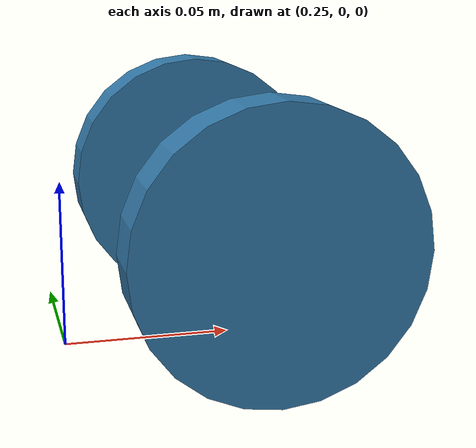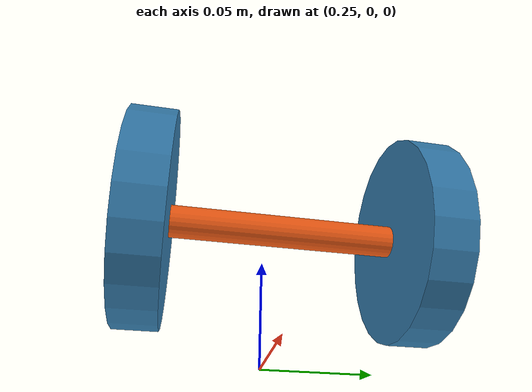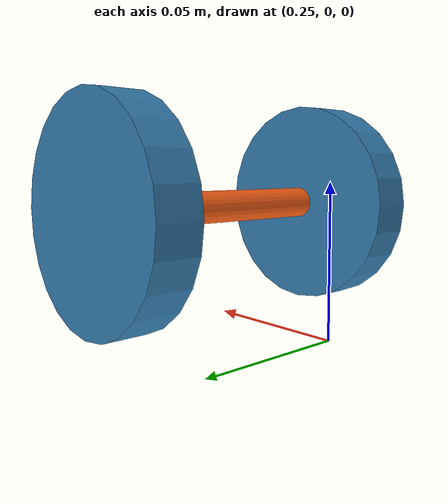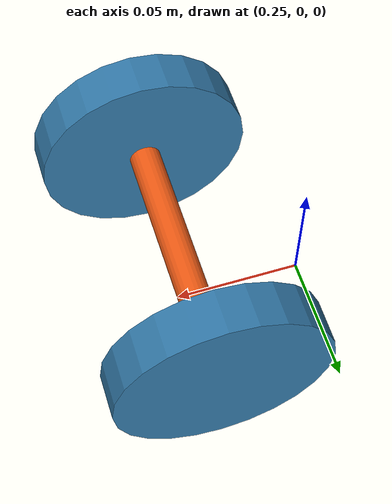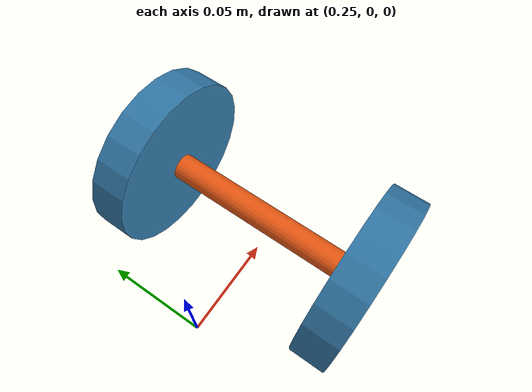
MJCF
<mujoco model="cylinder_weight_200g_v1">
  <worldbody>
    <body name="cylinder_weight_200g_v1" pos="0.3 0.0 0.04">
      <freejoint name="cylinder_weight_200g_v1_free" />
      <inertial mass="0.2" pos="0.0 0.0 0.0" fullinertia="0.0005751986666666668 0.00015687200000000007 0.0005751986666666668 0.0 0.0 0.0" />
      <geom name="cylinder_weight_200g_v1_grip" type="cylinder" size="0.006 0.044" pos="0.0 0.0 0.0" quat="0.7071067811865476 0.7071067811865476 0.0 0.0" density="0" contype="1" conaffinity="3" priority="2" friction="0.65 .01 .002" condim="3" solref=".005 1" solimp=".95 .99 .001" margin="0" rgba=".95 .36 .08 1" />
      <geom name="cylinder_weight_200g_v1_weight_-1" type="cylinder" size="0.04 0.008" pos="0.0 -0.05 0.0" quat="0.7071067811865476 0.7071067811865476 0.0 0.0" density="0" contype="1" conaffinity="3" priority="2" friction="0.65 .01 .002" condim="3" solref=".005 1" solimp=".95 .99 .001" margin="0" rgba=".20 .48 .67 1" />
      <geom name="cylinder_weight_200g_v1_weight_1" type="cylinder" size="0.04 0.008" pos="0.0 0.05 0.0" quat="0.7071067811865476 0.7071067811865476 0.0 0.0" density="0" contype="1" conaffinity="3" priority="2" friction="0.65 .01 .002" condim="3" solref=".005 1" solimp=".95 .99 .001" margin="0" rgba=".20 .48 .67 1" />
    </body>
  </worldbody>
</mujoco>
